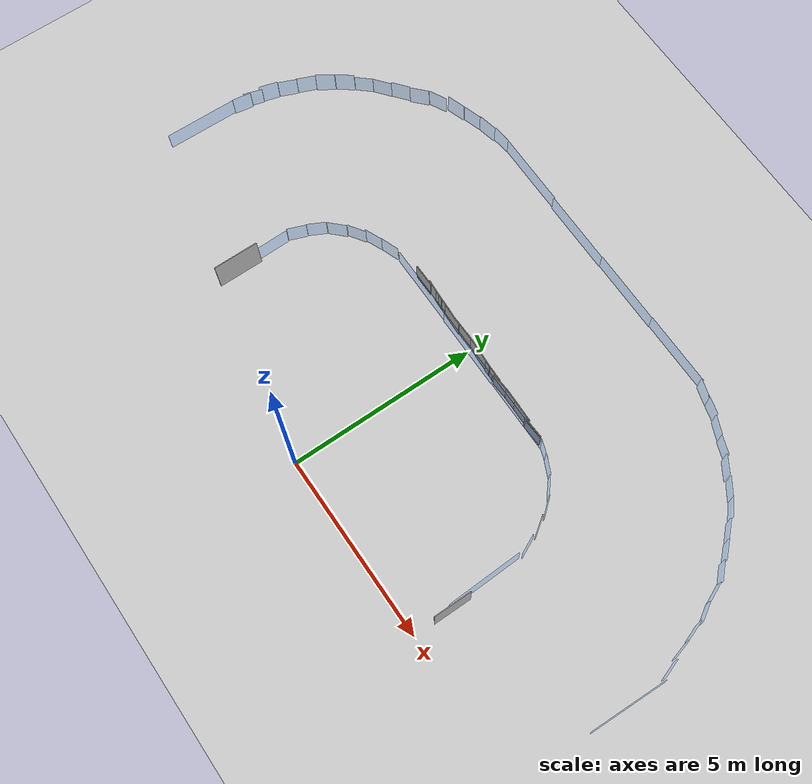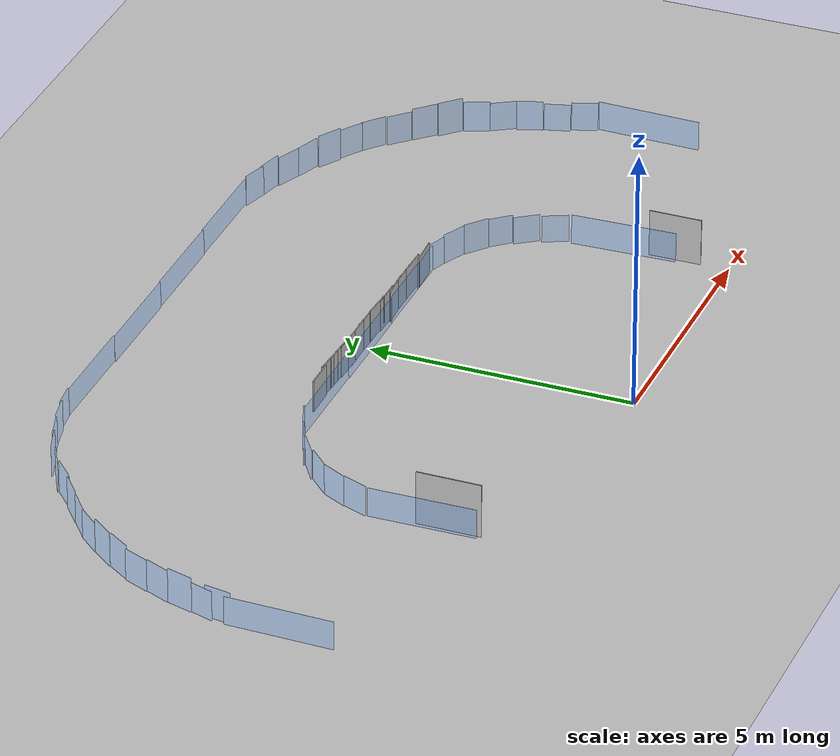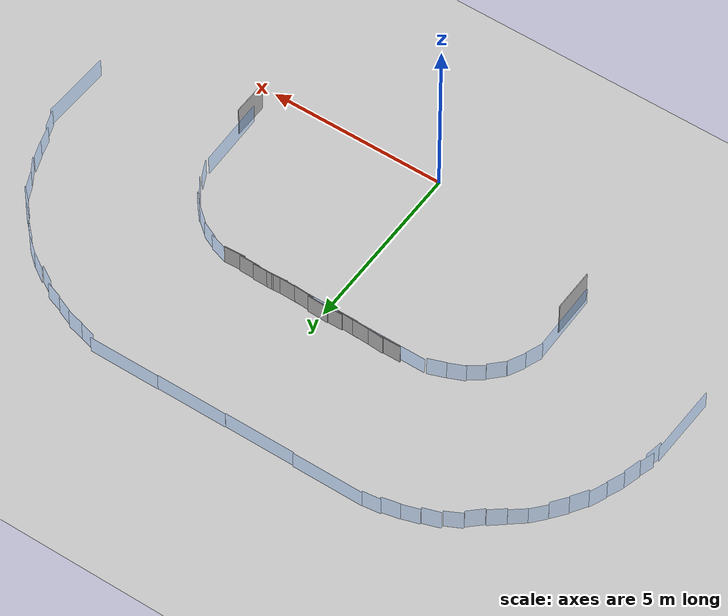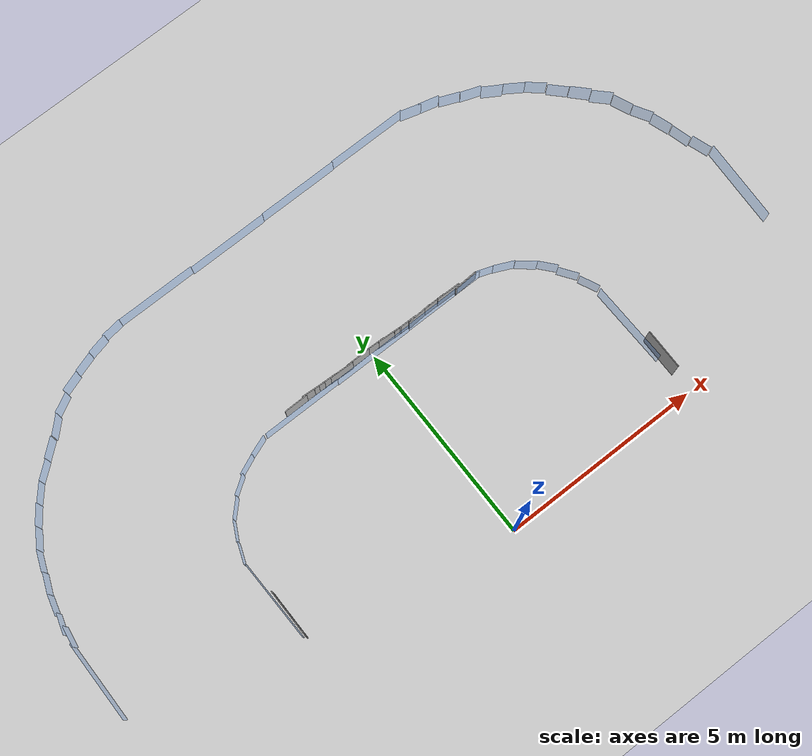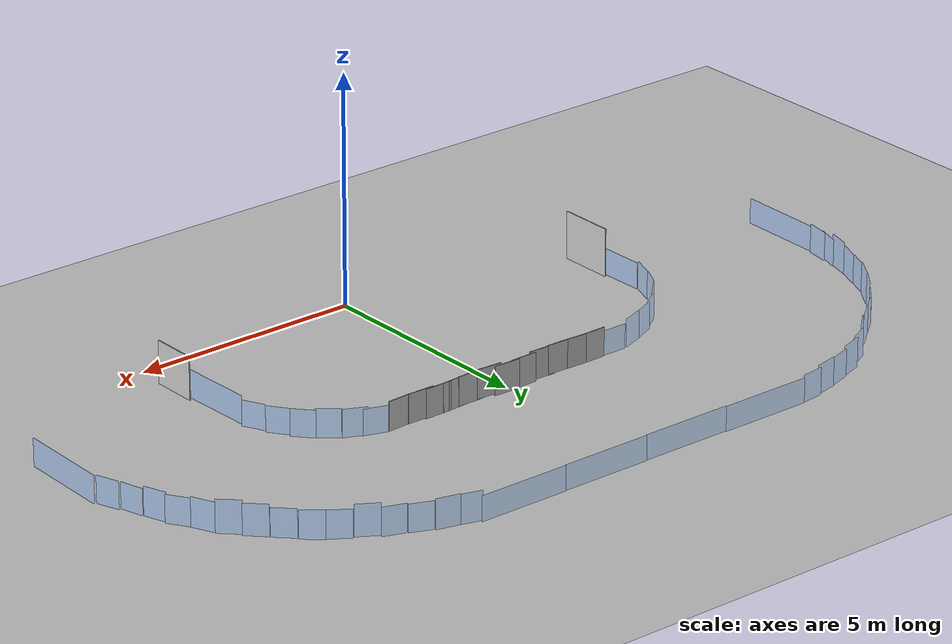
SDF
<sdf version="1.7">
 <world name="saft_city_arena">
  <model name="ground_plane">
   <static>1</static>
   <link name="link">
    <collision name="collision">
     <geometry><plane><normal>0 0 1</normal><size>100 100</size></plane></geometry>
     <surface>
      <contact><collide_bitmask>65535</collide_bitmask></contact>
      <friction><ode><mu>100</mu><mu2>50</mu2></ode></friction>
     </surface>
    </collision>
    <visual name="visual">
     <cast_shadows>0</cast_shadows>
     <geometry><plane><normal>0 0 1</normal><size>100 100</size></plane></geometry>
     <material>
      <script><uri>file://media/materials/scripts/gazebo.material</uri><name>Gazebo/Grey</name></script>
     </material>
    </visual>
   </link>
  </model>
  <model name="trash_sign_04">
   <static>1</static>
   <link name="sign">
    <visual name="visual">
     <pose>0 0 0.1 0 -0 0</pose>
     <geometry><box><size>0.02 1 1</size></box></geometry>
     <material>
      <script>
       <uri>model://photo_signs/trash_sign_04/materials/scripts</uri>
       <uri>model://photo_signs/trash_sign_04/materials/textures</uri>
       <name>PhotoSign/trash_sign_04</name>
      </script>
     </material>
    </visual>
   </link>
   <pose>5.01136 1.04539 0.304628 0 -0 0</pose>
  </model>
  <model name="building_sign_01">
   <static>1</static>
   <link name="sign">
    <visual name="visual">
     <pose>0 0 0.175 0 -0 0</pose>
     <geometry><box><size>0.02 1.2 1.2</size></box></geometry>
     <material>
      <script>
       <uri>model://photo_signs/building_sign_01/materials/scripts</uri>
       <uri>model://photo_signs/building_sign_01/materials/textures</uri>
       <name>PhotoSign/building_sign_01</name>
      </script>
     </material>
    </visual>
   </link>
   <pose>-4.98428 1.54626 0.247239 0 -0 0</pose>
  </model>
  <model name="person_sign_01">
   <static>1</static>
   <link name="sign">
    <visual name="visual">
     <pose>0 0 0.16 0 -0 0</pose>
     <geometry><box><size>0.02 0.6 0.62</size></box></geometry>
     <material>
      <script>
       <uri>model://photo_signs/person_sign_01/materials/scripts</uri>
       <uri>model://photo_signs/person_sign_01/materials/textures</uri>
       <name>PhotoSign/person_sign_01</name>
      </script>
     </material>
    </visual>
   </link>
   <pose>2.14956 5.05182 0.150774 0 0 -1.58447</pose>
  </model>
  <model name="person_sign_02">
   <static>1</static>
   <link name="sign">
    <visual name="visual">
     <pose>0 0 0.16 0 -0 0</pose>
     <geometry><box><size>0.02 0.6 0.62</size></box></geometry>
     <material>
      <script>
       <uri>model://photo_signs/person_sign_02/materials/scripts</uri>
       <uri>model://photo_signs/person_sign_02/materials/textures</uri>
       <name>PhotoSign/person_sign_02</name>
      </script>
     </material>
    </visual>
   </link>
   <pose>1.73394 5.06385 0.137015 0 0 -1.56904</pose>
  </model>
  <model name="person_sign_03">
   <static>1</static>
   <link name="sign">
    <visual name="visual">
     <pose>0 0 0.16 0 -0 0</pose>
     <geometry><box><size>0.02 0.6 0.62</size></box></geometry>
     <material>
      <script>
       <uri>model://photo_signs/person_sign_03/materials/scripts</uri>
       <uri>model://photo_signs/person_sign_03/materials/textures</uri>
       <name>PhotoSign/person_sign_03</name>
      </script>
     </material>
    </visual>
   </link>
   <pose>1.32292 5.05339 0.139864 0 0 -1.50844</pose>
  </model>
  <model name="person_sign_04">
   <static>1</static>
   <link name="sign">
    <visual name="visual">
     <pose>0 0 0.16 0 -0 0</pose>
     <geometry><box><size>0.02 0.6 0.62</size></box></geometry>
     <material>
      <script>
       <uri>model://photo_signs/person_sign_04/materials/scripts</uri>
       <uri>model://photo_signs/person_sign_04/materials/textures</uri>
       <name>PhotoSign/person_sign_04</name>
      </script>
     </material>
    </visual>
   </link>
   <pose>0.931752 5.06364 0.158173 0 0 -1.58189</pose>
  </model>
  <model name="person_sign_05">
   <static>1</static>
   <link name="sign">
    <visual name="visual">
     <pose>0 0 0.16 0 -0 0</pose>
     <geometry><box><size>0.02 0.6 0.62</size></box></geometry>
     <material>
      <script>
       <uri>model://photo_signs/person_sign_05/materials/scripts</uri>
       <uri>model://photo_signs/person_sign_05/materials/textures</uri>
       <name>PhotoSign/person_sign_05</name>
      </script>
     </material>
    </visual>
   </link>
   <pose>0.515768 5.07932 0.173126 0 0 -1.62224</pose>
  </model>
  <model name="person_sign_06">
   <static>1</static>
   <link name="sign">
    <visual name="visual">
     <pose>0 0 0.16 0 -0 0</pose>
     <geometry><box><size>0.02 0.6 0.62</size></box></geometry>
     <material>
      <script>
       <uri>model://photo_signs/person_sign_06/materials/scripts</uri>
       <uri>model://photo_signs/person_sign_06/materials/textures</uri>
       <name>PhotoSign/person_sign_06</name>
      </script>
     </material>
    </visual>
   </link>
   <pose>0.071031 5.11301 0.138445 0 0 -1.6041</pose>
  </model>
  <model name="person_sign_07">
   <static>1</static>
   <link name="sign">
    <visual name="visual">
     <pose>0 0 0.16 0 -0 0</pose>
     <geometry><box><size>0.02 0.6 0.62</size></box></geometry>
     <material>
      <script>
       <uri>model://photo_signs/person_sign_07/materials/scripts</uri>
       <uri>model://photo_signs/person_sign_07/materials/textures</uri>
       <name>PhotoSign/person_sign_07</name>
      </script>
     </material>
    </visual>
   </link>
   <pose>-0.349251 5.10924 0.145721 0 0 -1.55728</pose>
  </model>
  <model name="person_sign_08">
   <static>1</static>
   <link name="sign">
    <visual name="visual">
     <pose>0 0 0.16 0 -0 0</pose>
     <geometry><box><size>0.02 0.6 0.62</size></box></geometry>
     <material>
      <script>
       <uri>model://photo_signs/person_sign_08/materials/scripts</uri>
       <uri>model://photo_signs/person_sign_08/materials/textures</uri>
       <name>PhotoSign/person_sign_08</name>
      </script>
     </material>
    </visual>
   </link>
   <pose>-0.820761 5.0966 0.177459 0 0 -1.60914</pose>
  </model>
  <model name="person_sign_09">
   <static>1</static>
   <link name="sign">
    <visual name="visual">
     <pose>0 0 0.16 0 -0 0</pose>
     <geometry><box><size>0.02 0.6 0.62</size></box></geometry>
     <material>
      <script>
       <uri>model://photo_signs/person_sign_09/materials/scripts</uri>
       <uri>model://photo_signs/person_sign_09/materials/textures</uri>
       <name>PhotoSign/person_sign_09</name>
      </script>
     </material>
    </visual>
   </link>
   <pose>-1.26214 5.11592 0.19236 0 0 -1.6064</pose>
  </model>
  <model name="person_sign_10">
   <static>1</static>
   <link name="sign">
    <visual name="visual">
     <pose>0 0 0.16 0 -0 0</pose>
     <geometry><box><size>0.02 0.6 0.62</size></box></geometry>
     <material>
      <script>
       <uri>model://photo_signs/person_sign_10/materials/scripts</uri>
       <uri>model://photo_signs/person_sign_10/materials/textures</uri>
       <name>PhotoSign/person_sign_10</name>
      </script>
     </material>
    </visual>
   </link>
   <pose>-1.58387 5.13215 0.194342 0 0 -1.63895</pose>
  </model>
  <model name="person_sign_11">
   <static>1</static>
   <link name="sign">
    <visual name="visual">
     <pose>0 0 0.16 0 -0 0</pose>
     <geometry><box><size>0.02 0.6 0.62</size></box></geometry>
     <material>
      <script>
       <uri>model://photo_signs/person_sign_11/materials/scripts</uri>
       <uri>model://photo_signs/person_sign_11/materials/textures</uri>
       <name>PhotoSign/person_sign_11</name>
      </script>
     </material>
    </visual>
   </link>
   <pose>-2.07522 5.12272 0.182686 0 0 -1.56299</pose>
  </model>
  <model name="person_sign_12">
   <static>1</static>
   <link name="sign">
    <visual name="visual">
     <pose>0 0 0.16 0 -0 0</pose>
     <geometry><box><size>0.02 0.6 0.62</size></box></geometry>
     <material>
      <script>
       <uri>model://photo_signs/person_sign_12/materials/scripts</uri>
       <uri>model://photo_signs/person_sign_12/materials/textures</uri>
       <name>PhotoSign/person_sign_12</name>
      </script>
     </material>
    </visual>
   </link>
   <pose>2.62259 5.01801 0.129118 0 0 -1.52126</pose>
  </model>
  <model name="transparent_wall_7">
   <static>1</static>
   <link name="wall">
    <collision name="collision"><geometry><box><size>2 0.02 1</size></box></geometry></collision>
    <visual name="visual">
     <geometry><box><size>2 0.02 1</size></box></geometry>
     <material>
      <ambient>0.3 0.6 1 0.3</ambient>
      <diffuse>0.3 0.6 1 0.3</diffuse>
      <specular>0 0 0 0</specular>
      <emissive>0 0 0 0</emissive>
     </material>
    </visual>
   </link>
   <pose>-5.06249 2.00981 0.041984 0 -0 1.58519</pose>
  </model>
  <model name="transparent_wall_10">
   <static>1</static>
   <link name="wall">
    <collision name="collision"><geometry><box><size>2 0.02 1</size></box></geometry></collision>
    <visual name="visual">
     <geometry><box><size>2 0.02 1</size></box></geometry>
     <material>
      <ambient>0.3 0.6 1 0.3</ambient>
      <diffuse>0.3 0.6 1 0.3</diffuse>
      <specular>0 0 0 0</specular>
      <emissive>0 0 0 0</emissive>
     </material>
    </visual>
   </link>
   <pose>4.90263 2.00371 0.067201 0 -0 1.60296</pose>
  </model>
  <model name="transparent_wall_11">
   <static>1</static>
   <link name="wall">
    <collision name="collision"><geometry><box><size>2 0.02 1</size></box></geometry></collision>
    <visual name="visual">
     <geometry><box><size>2 0.02 1</size></box></geometry>
     <material>
      <ambient>0.3 0.6 1 0.3</ambient>
      <diffuse>0.3 0.6 1 0.3</diffuse>
      <specular>0 0 0 0</specular>
      <emissive>0 0 0 0</emissive>
     </material>
    </visual>
   </link>
   <pose>2.00706 5.00496 0 0 -0 0</pose>
  </model>
  <model name="transparent_wall_12">
   <static>1</static>
   <link name="wall">
    <collision name="collision"><geometry><box><size>2 0.02 1</size></box></geometry></collision>
    <visual name="visual">
     <geometry><box><size>2 0.02 1</size></box></geometry>
     <material>
      <ambient>0.3 0.6 1 0.3</ambient>
      <diffuse>0.3 0.6 1 0.3</diffuse>
      <specular>0 0 0 0</specular>
      <emissive>0 0 0 0</emissive>
     </material>
    </visual>
   </link>
   <pose>-0.012906 4.99693 0 0 -0 0</pose>
  </model>
  <model name="transparent_wall_13">
   <static>1</static>
   <link name="wall">
    <collision name="collision"><geometry><box><size>2 0.02 1</size></box></geometry></collision>
    <visual name="visual">
     <geometry><box><size>2 0.02 1</size></box></geometry>
     <material>
      <ambient>0.3 0.6 1 0.3</ambient>
      <diffuse>0.3 0.6 1 0.3</diffuse>
      <specular>0 0 0 0</specular>
      <emissive>0 0 0 0</emissive>
     </material>
    </visual>
   </link>
   <pose>-2.00866 5.01257 0 0 -0 0</pose>
  </model>
  <model name="transparent_wall_short_11">
   <static>1</static>
   <link name="wall">
    <collision name="collision"><geometry><box><size>0.5 0.02 1</size></box></geometry></collision>
    <visual name="visual">
     <geometry><box><size>0.5 0.02 1</size></box></geometry>
     <material>
      <ambient>0.3 0.6 1 0.3</ambient>
      <diffuse>0.3 0.6 1 0.3</diffuse>
      <specular>0 0 0 0</specular>
      <emissive>0 0 0 0</emissive>
     </material>
    </visual>
   </link>
   <pose>4.80907 3.2971 0.020246 0 0 -1.12421</pose>
  </model>
  <model name="transparent_wall_short_12">
   <static>1</static>
   <link name="wall">
    <collision name="collision"><geometry><box><size>0.5 0.02 1</size></box></geometry></collision>
    <visual name="visual">
     <geometry><box><size>0.5 0.02 1</size></box></geometry>
     <material>
      <ambient>0.3 0.6 1 0.3</ambient>
      <diffuse>0.3 0.6 1 0.3</diffuse>
      <specular>0 0 0 0</specular>
      <emissive>0 0 0 0</emissive>
     </material>
    </visual>
   </link>
   <pose>4.58747 3.77696 0.026694 0 0 -0.949792</pose>
  </model>
  <model name="transparent_wall_short_13">
   <static>1</static>
   <link name="wall">
    <collision name="collision"><geometry><box><size>0.5 0.02 1</size></box></geometry></collision>
    <visual name="visual">
     <geometry><box><size>0.5 0.02 1</size></box></geometry>
     <material>
      <ambient>0.3 0.6 1 0.3</ambient>
      <diffuse>0.3 0.6 1 0.3</diffuse>
      <specular>0 0 0 0</specular>
      <emissive>0 0 0 0</emissive>
     </material>
    </visual>
   </link>
   <pose>4.32065 4.19695 0.051881 0 0 -0.856989</pose>
  </model>
  <model name="transparent_wall_short_14">
   <static>1</static>
   <link name="wall">
    <collision name="collision"><geometry><box><size>0.5 0.02 1</size></box></geometry></collision>
    <visual name="visual">
     <geometry><box><size>0.5 0.02 1</size></box></geometry>
     <material>
      <ambient>0.3 0.6 1 0.3</ambient>
      <diffuse>0.3 0.6 1 0.3</diffuse>
      <specular>0 0 0 0</specular>
      <emissive>0 0 0 0</emissive>
     </material>
    </visual>
   </link>
   <pose>3.96315 4.51815 0.08493 0 0 -0.687549</pose>
  </model>
  <model name="transparent_wall_short_15">
   <static>1</static>
   <link name="wall">
    <collision name="collision"><geometry><box><size>0.5 0.02 1</size></box></geometry></collision>
    <visual name="visual">
     <geometry><box><size>0.5 0.02 1</size></box></geometry>
     <material>
      <ambient>0.3 0.6 1 0.3</ambient>
      <diffuse>0.3 0.6 1 0.3</diffuse>
      <specular>0 0 0 0</specular>
      <emissive>0 0 0 0</emissive>
     </material>
    </visual>
   </link>
   <pose>3.54274 4.79572 0.065202 0 0 -0.429976</pose>
  </model>
  <model name="transparent_wall_short_16">
   <static>1</static>
   <link name="wall">
    <collision name="collision"><geometry><box><size>0.5 0.02 1</size></box></geometry></collision>
    <visual name="visual">
     <geometry><box><size>0.5 0.02 1</size></box></geometry>
     <material>
      <ambient>0.3 0.6 1 0.3</ambient>
      <diffuse>0.3 0.6 1 0.3</diffuse>
      <specular>0 0 0 0</specular>
      <emissive>0 0 0 0</emissive>
     </material>
    </visual>
   </link>
   <pose>3.17105 4.95409 0.02787 0 0 -0.324928</pose>
  </model>
  <model name="transparent_wall_short_17">
   <static>1</static>
   <link name="wall">
    <collision name="collision"><geometry><box><size>0.5 0.02 1</size></box></geometry></collision>
    <visual name="visual">
     <geometry><box><size>0.5 0.02 1</size></box></geometry>
     <material>
      <ambient>0.3 0.6 1 0.3</ambient>
      <diffuse>0.3 0.6 1 0.3</diffuse>
      <specular>0 0 0 0</specular>
      <emissive>0 0 0 0</emissive>
     </material>
    </visual>
   </link>
   <pose>-3.29522 4.91907 0.079268 0 -0 0.353213</pose>
  </model>
  <model name="transparent_wall_short_18">
   <static>1</static>
   <link name="wall">
    <collision name="collision"><geometry><box><size>0.5 0.02 1</size></box></geometry></collision>
    <visual name="visual">
     <geometry><box><size>0.5 0.02 1</size></box></geometry>
     <material>
      <ambient>0.3 0.6 1 0.3</ambient>
      <diffuse>0.3 0.6 1 0.3</diffuse>
      <specular>0 0 0 0</specular>
      <emissive>0 0 0 0</emissive>
     </material>
    </visual>
   </link>
   <pose>-3.74482 4.73577 0.064179 0 -0 0.407671</pose>
  </model>
  <model name="transparent_wall_short_19">
   <static>1</static>
   <link name="wall">
    <collision name="collision"><geometry><box><size>0.5 0.02 1</size></box></geometry></collision>
    <visual name="visual">
     <geometry><box><size>0.5 0.02 1</size></box></geometry>
     <material>
      <ambient>0.3 0.6 1 0.3</ambient>
      <diffuse>0.3 0.6 1 0.3</diffuse>
      <specular>0 0 0 0</specular>
      <emissive>0 0 0 0</emissive>
     </material>
    </visual>
   </link>
   <pose>-4.13752 4.4844 0.046875 0 -0 0.590745</pose>
  </model>
  <model name="transparent_wall_short_20">
   <static>1</static>
   <link name="wall">
    <collision name="collision"><geometry><box><size>0.5 0.02 1</size></box></geometry></collision>
    <visual name="visual">
     <geometry><box><size>0.5 0.02 1</size></box></geometry>
     <material>
      <ambient>0.3 0.6 1 0.3</ambient>
      <diffuse>0.3 0.6 1 0.3</diffuse>
      <specular>0 0 0 0</specular>
      <emissive>0 0 0 0</emissive>
     </material>
    </visual>
   </link>
   <pose>-4.50886 4.13866 0.064163 0 -0 0.783613</pose>
  </model>
  <model name="transparent_wall_short_21">
   <static>1</static>
   <link name="wall">
    <collision name="collision"><geometry><box><size>0.5 0.02 1</size></box></geometry></collision>
    <visual name="visual">
     <geometry><box><size>0.5 0.02 1</size></box></geometry>
     <material>
      <ambient>0.3 0.6 1 0.3</ambient>
      <diffuse>0.3 0.6 1 0.3</diffuse>
      <specular>0 0 0 0</specular>
      <emissive>0 0 0 0</emissive>
     </material>
    </visual>
   </link>
   <pose>-4.8132 3.72803 0.071165 0 -0 1.09326</pose>
  </model>
  <model name="transparent_wall_short_22">
   <static>1</static>
   <link name="wall">
    <collision name="collision"><geometry><box><size>0.5 0.02 1</size></box></geometry></collision>
    <visual name="visual">
     <geometry><box><size>0.5 0.02 1</size></box></geometry>
     <material>
      <ambient>0.3 0.6 1 0.3</ambient>
      <diffuse>0.3 0.6 1 0.3</diffuse>
      <specular>0 0 0 0</specular>
      <emissive>0 0 0 0</emissive>
     </material>
    </visual>
   </link>
   <pose>-5.00622 3.26337 0.071421 0 -0 1.20118</pose>
  </model>
  <model name="transparent_wall_17">
   <static>1</static>
   <link name="wall">
    <collision name="collision"><geometry><box><size>2 0.02 1</size></box></geometry></collision>
    <visual name="visual">
     <geometry><box><size>2 0.02 1</size></box></geometry>
     <material>
      <ambient>0.3 0.6 1 0.3</ambient>
      <diffuse>0.3 0.6 1 0.3</diffuse>
      <specular>0 0 0 0</specular>
      <emissive>0 0 0 0</emissive>
     </material>
    </visual>
   </link>
   <pose>-9.08816 2.97502 0.023913 0 0 -1.58889</pose>
  </model>
  <model name="transparent_wall_18">
   <static>1</static>
   <link name="wall">
    <collision name="collision"><geometry><box><size>2 0.02 1</size></box></geometry></collision>
    <visual name="visual">
     <geometry><box><size>2 0.02 1</size></box></geometry>
     <material>
      <ambient>0.3 0.6 1 0.3</ambient>
      <diffuse>0.3 0.6 1 0.3</diffuse>
      <specular>0 0 0 0</specular>
      <emissive>0 0 0 0</emissive>
     </material>
    </visual>
   </link>
   <pose>-3.02083 9.08937 0 0 -0 0</pose>
  </model>
  <model name="transparent_wall_19">
   <static>1</static>
   <link name="wall">
    <collision name="collision"><geometry><box><size>2 0.02 1</size></box></geometry></collision>
    <visual name="visual">
     <geometry><box><size>2 0.02 1</size></box></geometry>
     <material>
      <ambient>0.3 0.6 1 0.3</ambient>
      <diffuse>0.3 0.6 1 0.3</diffuse>
      <specular>0 0 0 0</specular>
      <emissive>0 0 0 0</emissive>
     </material>
    </visual>
   </link>
   <pose>-1.02556 9.06492 0 0 -0 0</pose>
  </model>
  <model name="transparent_wall_20">
   <static>1</static>
   <link name="wall">
    <collision name="collision"><geometry><box><size>2 0.02 1</size></box></geometry></collision>
    <visual name="visual">
     <geometry><box><size>2 0.02 1</size></box></geometry>
     <material>
      <ambient>0.3 0.6 1 0.3</ambient>
      <diffuse>0.3 0.6 1 0.3</diffuse>
      <specular>0 0 0 0</specular>
      <emissive>0 0 0 0</emissive>
     </material>
    </visual>
   </link>
   <pose>0.982394 9.07937 0 0 -0 0</pose>
  </model>
  <model name="transparent_wall_21">
   <static>1</static>
   <link name="wall">
    <collision name="collision"><geometry><box><size>2 0.02 1</size></box></geometry></collision>
    <visual name="visual">
     <geometry><box><size>2 0.02 1</size></box></geometry>
     <material>
      <ambient>0.3 0.6 1 0.3</ambient>
      <diffuse>0.3 0.6 1 0.3</diffuse>
      <specular>0 0 0 0</specular>
      <emissive>0 0 0 0</emissive>
     </material>
    </visual>
   </link>
   <pose>2.97679 9.09387 0 0 -0 0</pose>
  </model>
  <model name="transparent_wall_22">
   <static>1</static>
   <link name="wall">
    <collision name="collision"><geometry><box><size>2 0.02 1</size></box></geometry></collision>
    <visual name="visual">
     <geometry><box><size>2 0.02 1</size></box></geometry>
     <material>
      <ambient>0.3 0.6 1 0.3</ambient>
      <diffuse>0.3 0.6 1 0.3</diffuse>
      <specular>0 0 0 0</specular>
      <emissive>0 0 0 0</emissive>
     </material>
    </visual>
   </link>
   <pose>8.99488 3.00669 0.061624 0 -0 1.54291</pose>
  </model>
  <model name="transparent_wall_short_40">
   <static>1</static>
   <link name="wall">
    <collision name="collision"><geometry><box><size>0.5 0.02 1</size></box></geometry></collision>
    <visual name="visual">
     <geometry><box><size>0.5 0.02 1</size></box></geometry>
     <material>
      <ambient>0.3 0.6 1 0.3</ambient>
      <diffuse>0.3 0.6 1 0.3</diffuse>
      <specular>0 0 0 0</specular>
      <emissive>0 0 0 0</emissive>
     </material>
    </visual>
   </link>
   <pose>8.88728 4.24642 0.053287 0 0 -1.23484</pose>
  </model>
  <model name="transparent_wall_short_41">
   <static>1</static>
   <link name="wall">
    <collision name="collision"><geometry><box><size>0.5 0.02 1</size></box></geometry></collision>
    <visual name="visual">
     <geometry><box><size>0.5 0.02 1</size></box></geometry>
     <material>
      <ambient>0.3 0.6 1 0.3</ambient>
      <diffuse>0.3 0.6 1 0.3</diffuse>
      <specular>0 0 0 0</specular>
      <emissive>0 0 0 0</emissive>
     </material>
    </visual>
   </link>
   <pose>8.6867 4.71955 0.028508 0 -0 1.84609</pose>
  </model>
  <model name="transparent_wall_short_42">
   <static>1</static>
   <link name="wall">
    <collision name="collision"><geometry><box><size>0.5 0.02 1</size></box></geometry></collision>
    <visual name="visual">
     <geometry><box><size>0.5 0.02 1</size></box></geometry>
     <material>
      <ambient>0.3 0.6 1 0.3</ambient>
      <diffuse>0.3 0.6 1 0.3</diffuse>
      <specular>0 0 0 0</specular>
      <emissive>0 0 0 0</emissive>
     </material>
    </visual>
   </link>
   <pose>8.51861 5.21171 0.081241 0 0 -1.23328</pose>
  </model>
  <model name="transparent_wall_short_43">
   <static>1</static>
   <link name="wall">
    <collision name="collision"><geometry><box><size>0.5 0.02 1</size></box></geometry></collision>
    <visual name="visual">
     <geometry><box><size>0.5 0.02 1</size></box></geometry>
     <material>
      <ambient>0.3 0.6 1 0.3</ambient>
      <diffuse>0.3 0.6 1 0.3</diffuse>
      <specular>0 0 0 0</specular>
      <emissive>0 0 0 0</emissive>
     </material>
    </visual>
   </link>
   <pose>8.34237 5.67323 0.06011 0 0 -1.01445</pose>
  </model>
  <model name="transparent_wall_short_44">
   <static>1</static>
   <link name="wall">
    <collision name="collision"><geometry><box><size>0.5 0.02 1</size></box></geometry></collision>
    <visual name="visual">
     <geometry><box><size>0.5 0.02 1</size></box></geometry>
     <material>
      <ambient>0.3 0.6 1 0.3</ambient>
      <diffuse>0.3 0.6 1 0.3</diffuse>
      <specular>0 0 0 0</specular>
      <emissive>0 0 0 0</emissive>
     </material>
    </visual>
   </link>
   <pose>8.10772 6.12248 0.093139 0 0 -1.15587</pose>
  </model>
  <model name="transparent_wall_short_45">
   <static>1</static>
   <link name="wall">
    <collision name="collision"><geometry><box><size>0.5 0.02 1</size></box></geometry></collision>
    <visual name="visual">
     <geometry><box><size>0.5 0.02 1</size></box></geometry>
     <material>
      <ambient>0.3 0.6 1 0.3</ambient>
      <diffuse>0.3 0.6 1 0.3</diffuse>
      <specular>0 0 0 0</specular>
      <emissive>0 0 0 0</emissive>
     </material>
    </visual>
   </link>
   <pose>7.83925 6.54872 0.169138 0 0 -0.771215</pose>
  </model>
  <model name="transparent_wall_short_46">
   <static>1</static>
   <link name="wall">
    <collision name="collision"><geometry><box><size>0.5 0.02 1</size></box></geometry></collision>
    <visual name="visual">
     <geometry><box><size>0.5 0.02 1</size></box></geometry>
     <material>
      <ambient>0.3 0.6 1 0.3</ambient>
      <diffuse>0.3 0.6 1 0.3</diffuse>
      <specular>0 0 0 0</specular>
      <emissive>0 0 0 0</emissive>
     </material>
    </visual>
   </link>
   <pose>4.16968 8.98319 0.087132 0 0 -0.277922</pose>
  </model>
  <model name="transparent_wall_short_47">
   <static>1</static>
   <link name="wall">
    <collision name="collision"><geometry><box><size>0.5 0.02 1</size></box></geometry></collision>
    <visual name="visual">
     <geometry><box><size>0.5 0.02 1</size></box></geometry>
     <material>
      <ambient>0.3 0.6 1 0.3</ambient>
      <diffuse>0.3 0.6 1 0.3</diffuse>
      <specular>0 0 0 0</specular>
      <emissive>0 0 0 0</emissive>
     </material>
    </visual>
   </link>
   <pose>7.51767 6.9363 0.133122 0 0 -0.795759</pose>
  </model>
  <model name="transparent_wall_short_48">
   <static>1</static>
   <link name="wall">
    <collision name="collision"><geometry><box><size>0.5 0.02 1</size></box></geometry></collision>
    <visual name="visual">
     <geometry><box><size>0.5 0.02 1</size></box></geometry>
     <material>
      <ambient>0.3 0.6 1 0.3</ambient>
      <diffuse>0.3 0.6 1 0.3</diffuse>
      <specular>0 0 0 0</specular>
      <emissive>0 0 0 0</emissive>
     </material>
    </visual>
   </link>
   <pose>7.16246 7.30624 0.072908 0 0 -0.784456</pose>
  </model>
  <model name="transparent_wall_short_49">
   <static>1</static>
   <link name="wall">
    <collision name="collision"><geometry><box><size>0.5 0.02 1</size></box></geometry></collision>
    <visual name="visual">
     <geometry><box><size>0.5 0.02 1</size></box></geometry>
     <material>
      <ambient>0.3 0.6 1 0.3</ambient>
      <diffuse>0.3 0.6 1 0.3</diffuse>
      <specular>0 0 0 0</specular>
      <emissive>0 0 0 0</emissive>
     </material>
    </visual>
   </link>
   <pose>6.80599 7.68511 0.069898 0 0 -0.705112</pose>
  </model>
  <model name="transparent_wall_short_50">
   <static>1</static>
   <link name="wall">
    <collision name="collision"><geometry><box><size>0.5 0.02 1</size></box></geometry></collision>
    <visual name="visual">
     <geometry><box><size>0.5 0.02 1</size></box></geometry>
     <material>
      <ambient>0.3 0.6 1 0.3</ambient>
      <diffuse>0.3 0.6 1 0.3</diffuse>
      <specular>0 0 0 0</specular>
      <emissive>0 0 0 0</emissive>
     </material>
    </visual>
   </link>
   <pose>6.4072 7.97776 0.063917 0 0 -0.58438</pose>
  </model>
  <model name="transparent_wall_short_51">
   <static>1</static>
   <link name="wall">
    <collision name="collision"><geometry><box><size>0.5 0.02 1</size></box></geometry></collision>
    <visual name="visual">
     <geometry><box><size>0.5 0.02 1</size></box></geometry>
     <material>
      <ambient>0.3 0.6 1 0.3</ambient>
      <diffuse>0.3 0.6 1 0.3</diffuse>
      <specular>0 0 0 0</specular>
      <emissive>0 0 0 0</emissive>
     </material>
    </visual>
   </link>
   <pose>5.94899 8.22274 0.135529 0 0 -0.545688</pose>
  </model>
  <model name="transparent_wall_short_52">
   <static>1</static>
   <link name="wall">
    <collision name="collision"><geometry><box><size>0.5 0.02 1</size></box></geometry></collision>
    <visual name="visual">
     <geometry><box><size>0.5 0.02 1</size></box></geometry>
     <material>
      <ambient>0.3 0.6 1 0.3</ambient>
      <diffuse>0.3 0.6 1 0.3</diffuse>
      <specular>0 0 0 0</specular>
      <emissive>0 0 0 0</emissive>
     </material>
    </visual>
   </link>
   <pose>5.53732 8.48309 0.069848 0 0 -0.341585</pose>
  </model>
  <model name="transparent_wall_short_53">
   <static>1</static>
   <link name="wall">
    <collision name="collision"><geometry><box><size>0.5 0.02 1</size></box></geometry></collision>
    <visual name="visual">
     <geometry><box><size>0.5 0.02 1</size></box></geometry>
     <material>
      <ambient>0.3 0.6 1 0.3</ambient>
      <diffuse>0.3 0.6 1 0.3</diffuse>
      <specular>0 0 0 0</specular>
      <emissive>0 0 0 0</emissive>
     </material>
    </visual>
   </link>
   <pose>5.06543 8.68305 0.054991 0 0 -0.392538</pose>
  </model>
  <model name="transparent_wall_short_54">
   <static>1</static>
   <link name="wall">
    <collision name="collision"><geometry><box><size>0.5 0.02 1</size></box></geometry></collision>
    <visual name="visual">
     <geometry><box><size>0.5 0.02 1</size></box></geometry>
     <material>
      <ambient>0.3 0.6 1 0.3</ambient>
      <diffuse>0.3 0.6 1 0.3</diffuse>
      <specular>0 0 0 0</specular>
      <emissive>0 0 0 0</emissive>
     </material>
    </visual>
   </link>
   <pose>4.60034 8.86837 0.102191 0 0 -0.248214</pose>
  </model>
  <model name="transparent_wall_short_55">
   <static>1</static>
   <link name="wall">
    <collision name="collision"><geometry><box><size>0.5 0.02 1</size></box></geometry></collision>
    <visual name="visual">
     <geometry><box><size>0.5 0.02 1</size></box></geometry>
     <material>
      <ambient>0.3 0.6 1 0.3</ambient>
      <diffuse>0.3 0.6 1 0.3</diffuse>
      <specular>0 0 0 0</specular>
      <emissive>0 0 0 0</emissive>
     </material>
    </visual>
   </link>
   <pose>-4.26617 9.04991 0.051912 0 -0 0.122493</pose>
  </model>
  <model name="transparent_wall_short_56">
   <static>1</static>
   <link name="wall">
    <collision name="collision"><geometry><box><size>0.5 0.02 1</size></box></geometry></collision>
    <visual name="visual">
     <geometry><box><size>0.5 0.02 1</size></box></geometry>
     <material>
      <ambient>0.3 0.6 1 0.3</ambient>
      <diffuse>0.3 0.6 1 0.3</diffuse>
      <specular>0 0 0 0</specular>
      <emissive>0 0 0 0</emissive>
     </material>
    </visual>
   </link>
   <pose>-4.72907 8.9363 0.090378 0 -0 0.213294</pose>
  </model>
  <model name="transparent_wall_short_57">
   <static>1</static>
   <link name="wall">
    <collision name="collision"><geometry><box><size>0.5 0.02 1</size></box></geometry></collision>
    <visual name="visual">
     <geometry><box><size>0.5 0.02 1</size></box></geometry>
     <material>
      <ambient>0.3 0.6 1 0.3</ambient>
      <diffuse>0.3 0.6 1 0.3</diffuse>
      <specular>0 0 0 0</specular>
      <emissive>0 0 0 0</emissive>
     </material>
    </visual>
   </link>
   <pose>-6.13646 8.35492 0.078406 0 -0 0.474063</pose>
  </model>
  <model name="transparent_wall_short_58">
   <static>1</static>
   <link name="wall">
    <collision name="collision"><geometry><box><size>0.5 0.02 1</size></box></geometry></collision>
    <visual name="visual">
     <geometry><box><size>0.5 0.02 1</size></box></geometry>
     <material>
      <ambient>0.3 0.6 1 0.3</ambient>
      <diffuse>0.3 0.6 1 0.3</diffuse>
      <specular>0 0 0 0</specular>
      <emissive>0 0 0 0</emissive>
     </material>
    </visual>
   </link>
   <pose>-5.6904 8.6185 0.106429 0 -0 0.318603</pose>
  </model>
  <model name="transparent_wall_short_59">
   <static>1</static>
   <link name="wall">
    <collision name="collision"><geometry><box><size>0.5 0.02 1</size></box></geometry></collision>
    <visual name="visual">
     <geometry><box><size>0.5 0.02 1</size></box></geometry>
     <material>
      <ambient>0.3 0.6 1 0.3</ambient>
      <diffuse>0.3 0.6 1 0.3</diffuse>
      <specular>0 0 0 0</specular>
      <emissive>0 0 0 0</emissive>
     </material>
    </visual>
   </link>
   <pose>-5.21425 8.80043 0.06284 0 -0 0.301207</pose>
  </model>
  <model name="transparent_wall_short_60">
   <static>1</static>
   <link name="wall">
    <collision name="collision"><geometry><box><size>0.5 0.02 1</size></box></geometry></collision>
    <visual name="visual">
     <geometry><box><size>0.5 0.02 1</size></box></geometry>
     <material>
      <ambient>0.3 0.6 1 0.3</ambient>
      <diffuse>0.3 0.6 1 0.3</diffuse>
      <specular>0 0 0 0</specular>
      <emissive>0 0 0 0</emissive>
     </material>
    </visual>
   </link>
   <pose>-6.53103 8.03614 0.119148 0 -0 0.756399</pose>
  </model>
  <model name="transparent_wall_short_61">
   <static>1</static>
   <link name="wall">
    <collision name="collision"><geometry><box><size>0.5 0.02 1</size></box></geometry></collision>
    <visual name="visual">
     <geometry><box><size>0.5 0.02 1</size></box></geometry>
     <material>
      <ambient>0.3 0.6 1 0.3</ambient>
      <diffuse>0.3 0.6 1 0.3</diffuse>
      <specular>0 0 0 0</specular>
      <emissive>0 0 0 0</emissive>
     </material>
    </visual>
   </link>
   <pose>-6.93516 7.71716 0.105763 0 -0 0.683287</pose>
  </model>
  <model name="transparent_wall_short_62">
   <static>1</static>
   <link name="wall">
    <collision name="collision"><geometry><box><size>0.5 0.02 1</size></box></geometry></collision>
    <visual name="visual">
     <geometry><box><size>0.5 0.02 1</size></box></geometry>
     <material>
      <ambient>0.3 0.6 1 0.3</ambient>
      <diffuse>0.3 0.6 1 0.3</diffuse>
      <specular>0 0 0 0</specular>
      <emissive>0 0 0 0</emissive>
     </material>
    </visual>
   </link>
   <pose>-7.32445 7.39506 0.049554 0 -0 0.670042</pose>
  </model>
  <model name="transparent_wall_short_63">
   <static>1</static>
   <link name="wall">
    <collision name="collision"><geometry><box><size>0.5 0.02 1</size></box></geometry></collision>
    <visual name="visual">
     <geometry><box><size>0.5 0.02 1</size></box></geometry>
     <material>
      <ambient>0.3 0.6 1 0.3</ambient>
      <diffuse>0.3 0.6 1 0.3</diffuse>
      <specular>0 0 0 0</specular>
      <emissive>0 0 0 0</emissive>
     </material>
    </visual>
   </link>
   <pose>-7.67833 7.06209 0.045171 0 -0 0.846107</pose>
  </model>
  <model name="transparent_wall_short_64">
   <static>1</static>
   <link name="wall">
    <collision name="collision"><geometry><box><size>0.5 0.02 1</size></box></geometry></collision>
    <visual name="visual">
     <geometry><box><size>0.5 0.02 1</size></box></geometry>
     <material>
      <ambient>0.3 0.6 1 0.3</ambient>
      <diffuse>0.3 0.6 1 0.3</diffuse>
      <specular>0 0 0 0</specular>
      <emissive>0 0 0 0</emissive>
     </material>
    </visual>
   </link>
   <pose>-7.99997 6.66594 0.138534 0 -0 0.910116</pose>
  </model>
  <model name="transparent_wall_short_65">
   <static>1</static>
   <link name="wall">
    <collision name="collision"><geometry><box><size>0.5 0.02 1</size></box></geometry></collision>
    <visual name="visual">
     <geometry><box><size>0.5 0.02 1</size></box></geometry>
     <material>
      <ambient>0.3 0.6 1 0.3</ambient>
      <diffuse>0.3 0.6 1 0.3</diffuse>
      <specular>0 0 0 0</specular>
      <emissive>0 0 0 0</emissive>
     </material>
    </visual>
   </link>
   <pose>-8.28805 6.24134 0.147762 0 -0 0.991627</pose>
  </model>
  <model name="transparent_wall_short_66">
   <static>1</static>
   <link name="wall">
    <collision name="collision"><geometry><box><size>0.5 0.02 1</size></box></geometry></collision>
    <visual name="visual">
     <geometry><box><size>0.5 0.02 1</size></box></geometry>
     <material>
      <ambient>0.3 0.6 1 0.3</ambient>
      <diffuse>0.3 0.6 1 0.3</diffuse>
      <specular>0 0 0 0</specular>
      <emissive>0 0 0 0</emissive>
     </material>
    </visual>
   </link>
   <pose>-8.537 5.81032 0.096379 0 -0 1.17017</pose>
  </model>
  <model name="transparent_wall_short_67">
   <static>1</static>
   <link name="wall">
    <collision name="collision"><geometry><box><size>0.5 0.02 1</size></box></geometry></collision>
    <visual name="visual">
     <geometry><box><size>0.5 0.02 1</size></box></geometry>
     <material>
      <ambient>0.3 0.6 1 0.3</ambient>
      <diffuse>0.3 0.6 1 0.3</diffuse>
      <specular>0 0 0 0</specular>
      <emissive>0 0 0 0</emissive>
     </material>
    </visual>
   </link>
   <pose>-8.71697 5.34215 0.102127 0 -0 1.16696</pose>
  </model>
  <model name="transparent_wall_short_68">
   <static>1</static>
   <link name="wall">
    <collision name="collision"><geometry><box><size>0.5 0.02 1</size></box></geometry></collision>
    <visual name="visual">
     <geometry><box><size>0.5 0.02 1</size></box></geometry>
     <material>
      <ambient>0.3 0.6 1 0.3</ambient>
      <diffuse>0.3 0.6 1 0.3</diffuse>
      <specular>0 0 0 0</specular>
      <emissive>0 0 0 0</emissive>
     </material>
    </visual>
   </link>
   <pose>-8.87671 4.8642 0.153092 0 -0 1.29623</pose>
  </model>
  <model name="transparent_wall_short_69">
   <static>1</static>
   <link name="wall">
    <collision name="collision"><geometry><box><size>0.5 0.02 1</size></box></geometry></collision>
    <visual name="visual">
     <geometry><box><size>0.5 0.02 1</size></box></geometry>
     <material>
      <ambient>0.3 0.6 1 0.3</ambient>
      <diffuse>0.3 0.6 1 0.3</diffuse>
      <specular>0 0 0 0</specular>
      <emissive>0 0 0 0</emissive>
     </material>
    </visual>
   </link>
   <pose>-8.98158 4.44363 0.051931 0 -0 1.26046</pose>
  </model>
  <model name="transparent_wall_short_70">
   <static>1</static>
   <link name="wall">
    <collision name="collision"><geometry><box><size>0.5 0.02 1</size></box></geometry></collision>
    <visual name="visual">
     <geometry><box><size>0.5 0.02 1</size></box></geometry>
     <material>
      <ambient>0.3 0.6 1 0.3</ambient>
      <diffuse>0.3 0.6 1 0.3</diffuse>
      <specular>0 0 0 0</specular>
      <emissive>0 0 0 0</emissive>
     </material>
    </visual>
   </link>
   <pose>-8.99916 4.11919 0.093214 0 -0 1.39893</pose>
  </model>
 </world>
</sdf>
